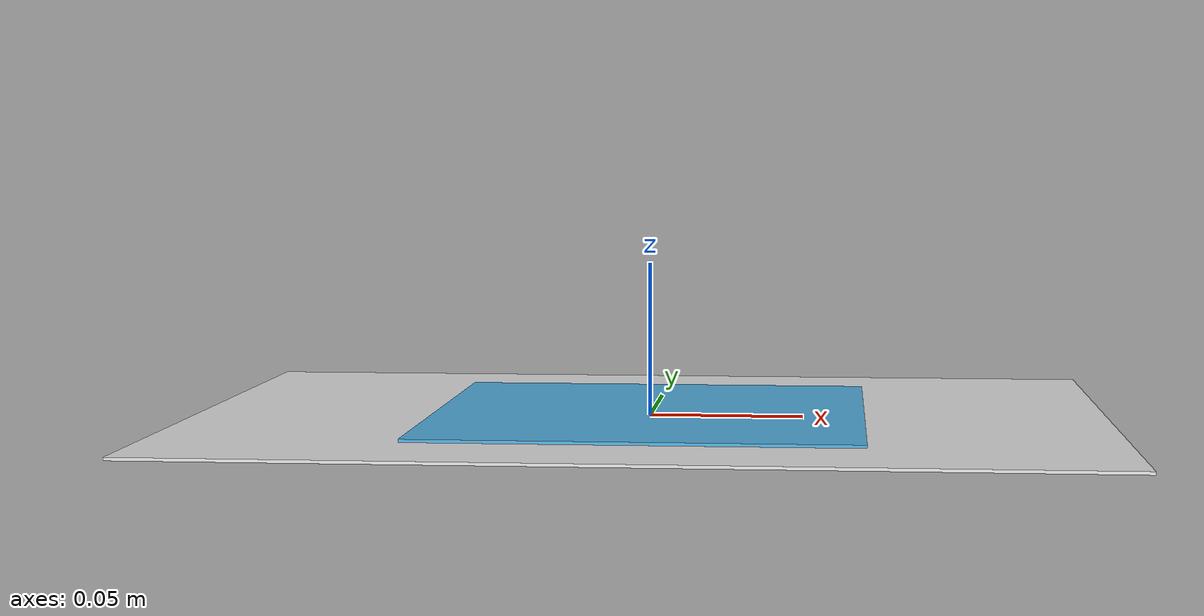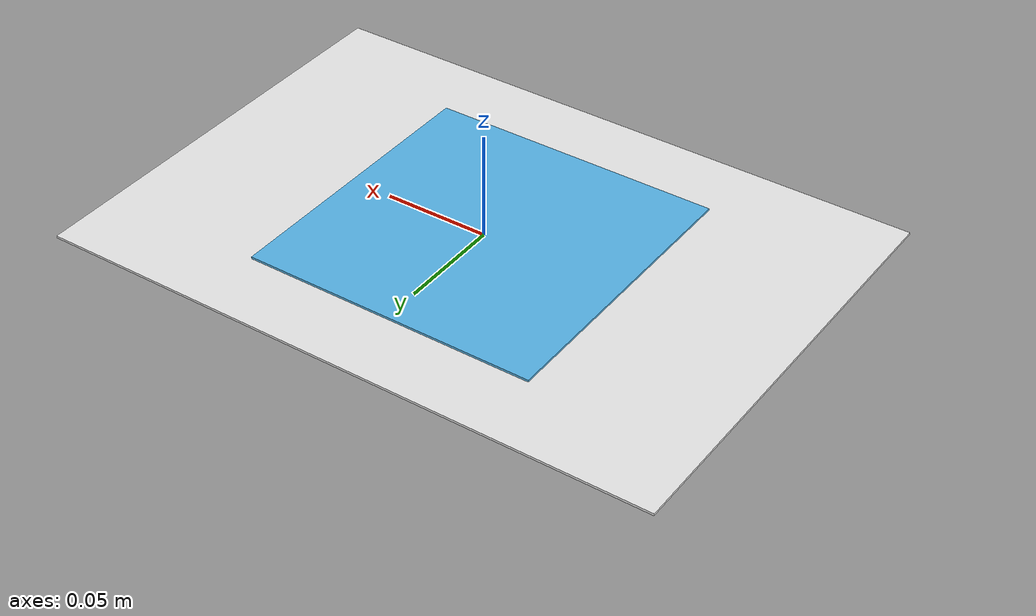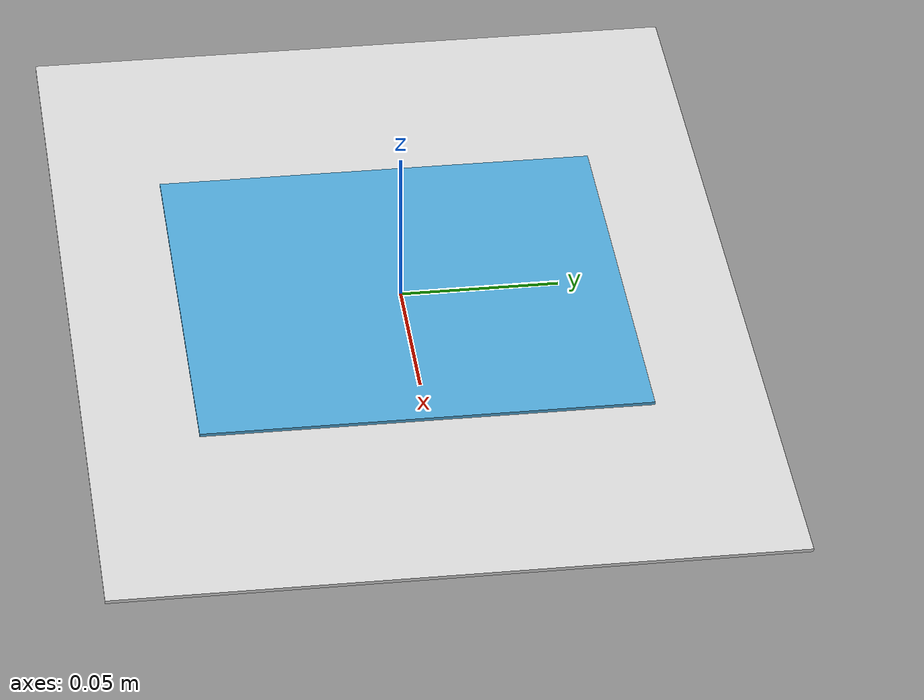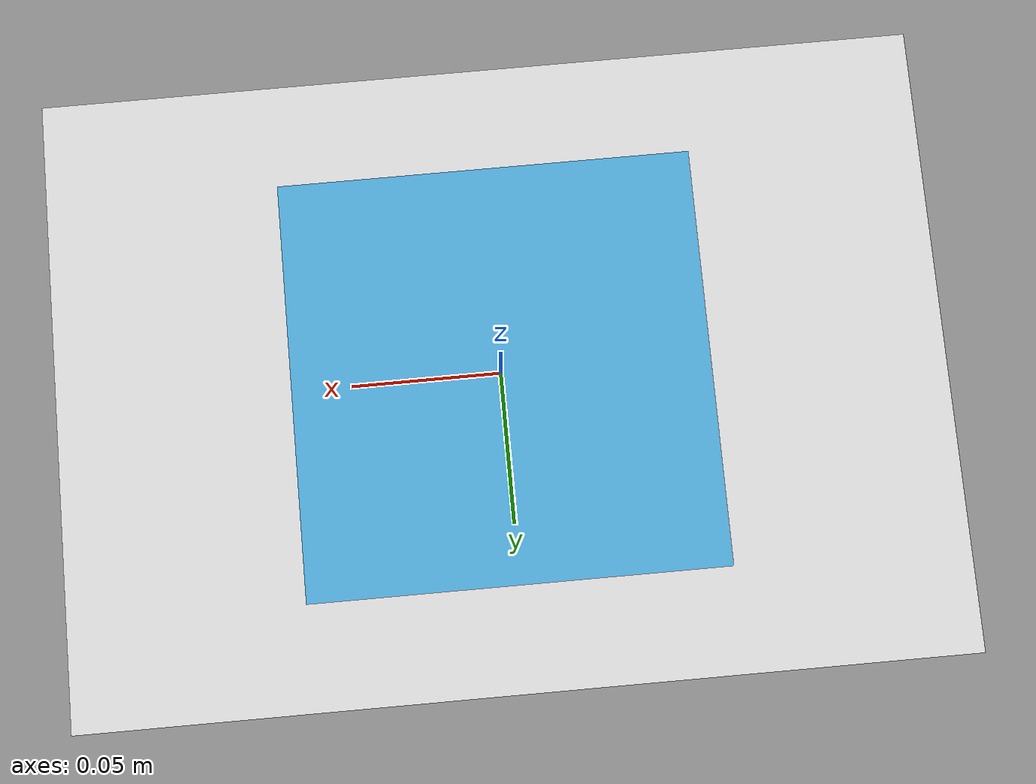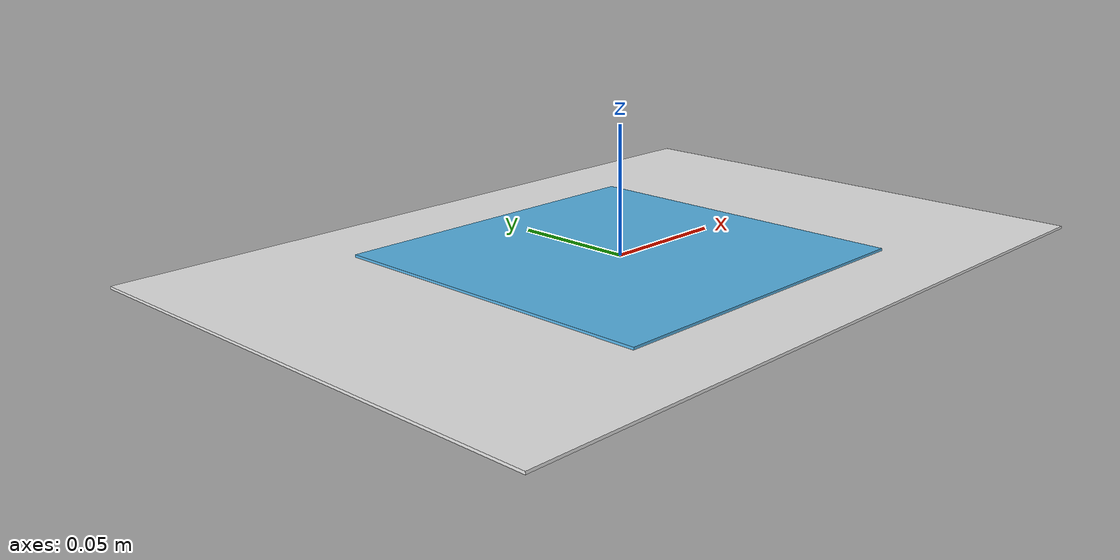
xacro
<robot xmlns:xacro="http://wiki.ros.org/xacro" name="aruco_marker">

    <xacro:include filename="$(find breadcrumb_gazebo)/urdf/fiducials/aruco_marker.xacro"/>

    <link name="world"/>

    <xacro:aruco_marker prefix="$aruco_marker_" marker_id="49" parent="world">
        <origin xyz="0 0 0" rpy="0 0 0"/>
    </xacro:aruco_marker>

</robot>

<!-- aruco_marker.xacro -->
<robot xmlns:xacro="http://wiki.ros.org/xacro" name="aruco_marker">

    <xacro:macro name="aruco_marker" params="prefix marker_id parent='' *origin">

        <xacro:if value="${parent != ''}">
            <joint name="${prefix}${marker_id}_joint" type="fixed">
                <parent link="world"/>
                <child link="${prefix}${marker_id}base_link"/>
                <insert_block name="origin"/>
            </joint>
        </xacro:if>

        <link name="${prefix}${marker_id}base_link">
            <inertial>
                <mass value="0.01"/>
                <inertia ixx="0.0" ixy="0.0" ixz="0.0" iyy="0.0" iyz="0.0" izz="0.0"/>
            </inertial>
            <visual>
                <geometry>
                    <box size="0.14 0.14 0.003"/>
                </geometry>
            </visual>
        </link>

        <gazebo reference="${prefix}${marker_id}base_link">
            <material>ArucoVisualMarker${marker_id}/Marker</material>
            <turnGravityOff>true</turnGravityOff>
        </gazebo>

        <joint name="${prefix}${marker_id}paper_joint" type="fixed">
            <parent link="${prefix}${marker_id}base_link"/>
            <child link="${prefix}${marker_id}paper_link"/>
        </joint>

        <link name="${prefix}${marker_id}paper_link">
            <visual>
                <geometry>
                    <box size="0.297 0.21 0.001"/>
                </geometry>
            </visual>
        </link>

        <gazebo reference="${prefix}${marker_id}paper_link">
            <material>MagniWorld/White</material>
        </gazebo>

    </xacro:macro>

</robot>
